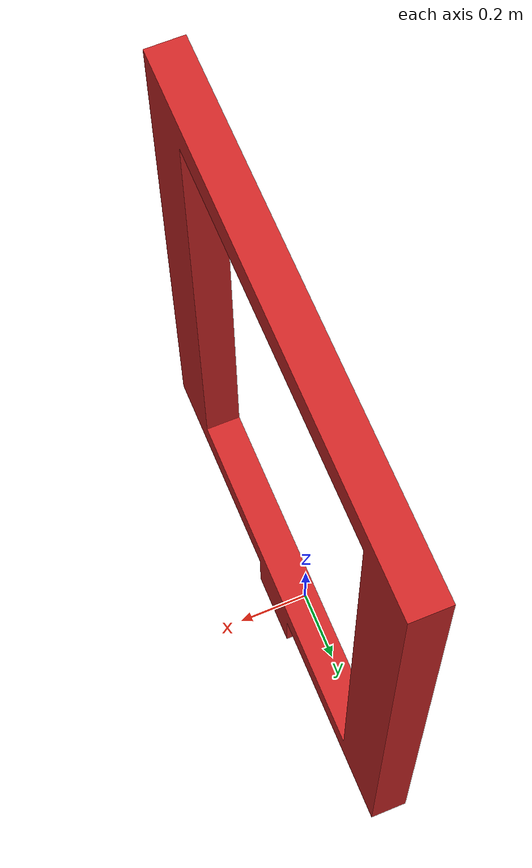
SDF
<?xml version="1.0"?>
<sdf version="1.7">
  <static>true</static>
  <model name="sqaure_window_2025">
    <link name="link">
      <collision name='collision'>
        <pose frame=''>0 0 0 0 0 0</pose>
        <geometry>
            <mesh>
            <uri>model://sqaure_window_2025/meshes/0515.stl</uri>
            <scale>1 1 1</scale>
            </mesh>
        </geometry>
        </collision>
      <!-- 显示设置 -->
      <visual name="visual">
        <geometry>
          <mesh>
            <scale>1 2 1</scale>
            <uri>model://sqaure_window_2025/meshes/0515.stl</uri>
          </mesh>
        </geometry>
        <material>
          <script>
            <name>Gazebo/Red</name>
            <uri>file://media/materials/scripts/gazebo.material</uri>
          </script>
        </material>
      </visual>
    </link>
  </model>
</sdf>
